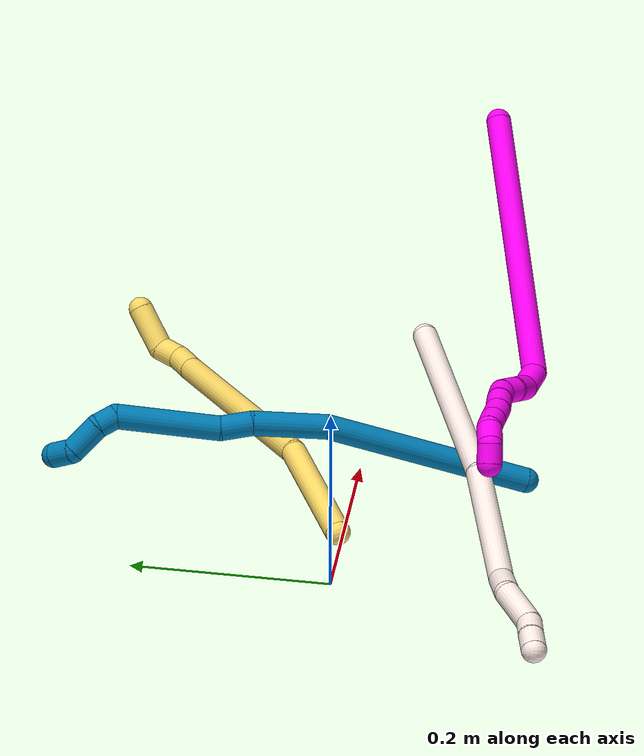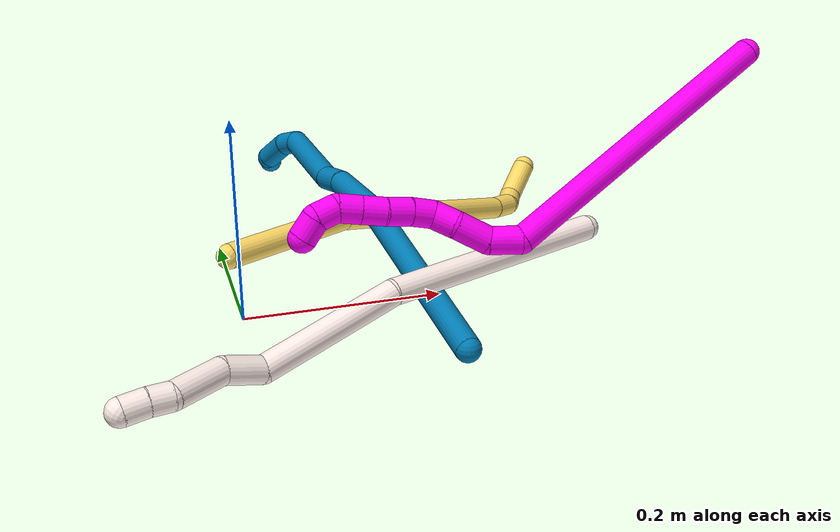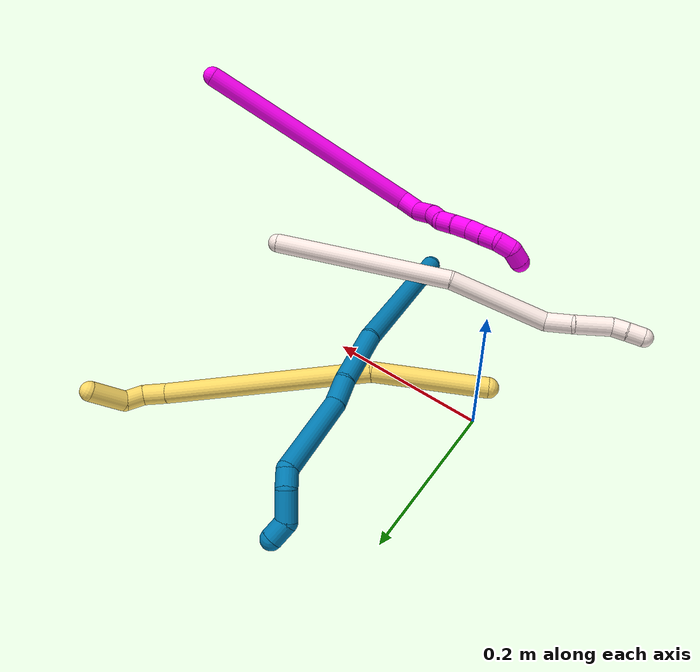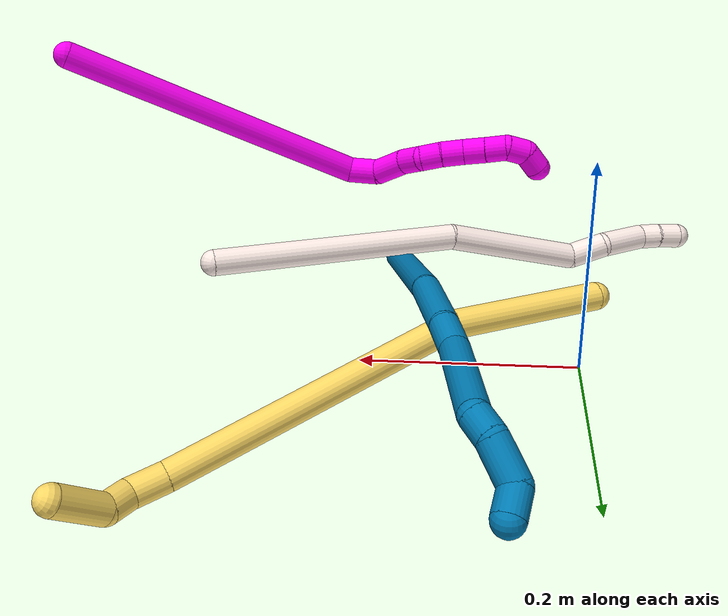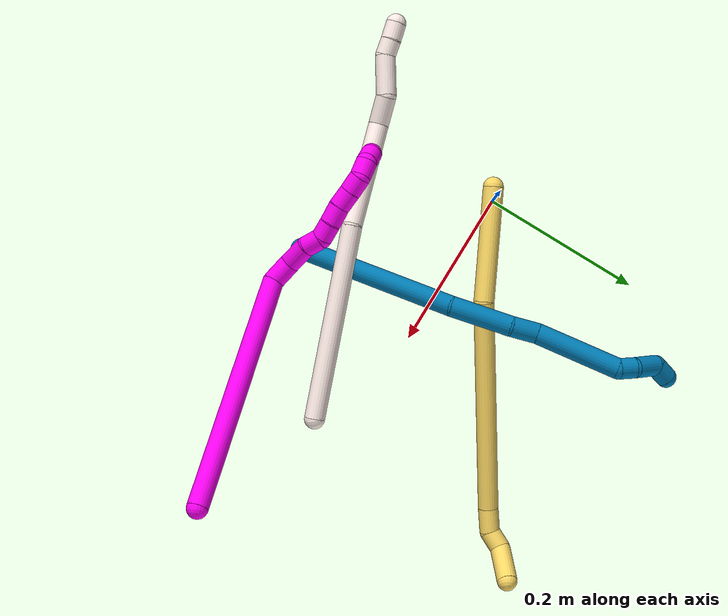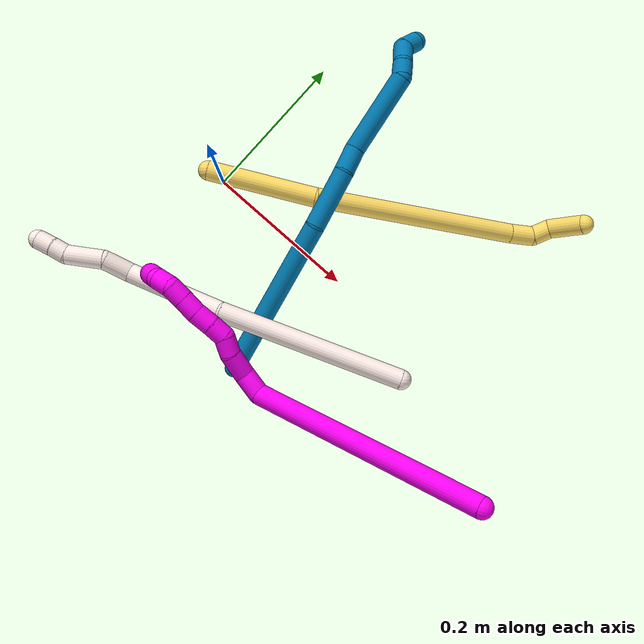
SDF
<sdf version="1.7">
 <world name="default">
  <model name="5">
   <static>0</static>
   <link name="5">
    <collision name="collision-cylinder-e_1_1_4">
     <pose>0.037156 0.019411 0.055386 -0.337096 0.564404 -0.098594</pose>
     <geometry><cylinder><radius>0.0125</radius><length>0.138924</length></cylinder></geometry>
     <surface>
      <friction><ode><mu>1.16</mu><mu2>1.16</mu2><slip1>0</slip1><slip2>0</slip2></ode></friction>
      <contact><ode><kp>1e+06</kp><kd>1</kd><max_vel>0</max_vel><min_depth>0.001</min_depth></ode></contact>
     </surface>
    </collision>
    <visual name="visual-cylinder-e_1_1_4">
     <pose>0.037156 0.019411 0.055386 -0.337096 0.564404 -0.098594</pose>
     <geometry><cylinder><radius>0.0125</radius><length>0.138924</length></cylinder></geometry>
     <material><ambient>1 0.858824 0.4 1</ambient></material>
    </visual>
    <collision name="collision-cylinder-e_2_4_5">
     <pose>0.154613 0.100895 0.192617 -0.648869 0.663506 -0.230684</pose>
     <geometry><cylinder><radius>0.0125</radius><length>0.260767</length></cylinder></geometry>
     <surface>
      <friction><ode><mu>1.16</mu><mu2>1.16</mu2><slip1>0</slip1><slip2>0</slip2></ode></friction>
      <contact><ode><kp>1e+06</kp><kd>1</kd><max_vel>0</max_vel><min_depth>0.001</min_depth></ode></contact>
     </surface>
    </collision>
    <visual name="visual-cylinder-e_2_4_5">
     <pose>0.154613 0.100895 0.192617 -0.648869 0.663506 -0.230684</pose>
     <geometry><cylinder><radius>0.0125</radius><length>0.260767</length></cylinder></geometry>
     <material><ambient>1 0.858824 0.4 1</ambient></material>
    </visual>
    <collision name="collision-cylinder-e_3_5_6">
     <pose>0.243028 0.170067 0.285196 -0.584253 0.562541 -0.173345</pose>
     <geometry><cylinder><radius>0.0125</radius><length>0.030428</length></cylinder></geometry>
     <surface>
      <friction><ode><mu>1.16</mu><mu2>1.16</mu2><slip1>0</slip1><slip2>0</slip2></ode></friction>
      <contact><ode><kp>1e+06</kp><kd>1</kd><max_vel>0</max_vel><min_depth>0.001</min_depth></ode></contact>
     </surface>
    </collision>
    <visual name="visual-cylinder-e_3_5_6">
     <pose>0.243028 0.170067 0.285196 -0.584253 0.562541 -0.173345</pose>
     <geometry><cylinder><radius>0.0125</radius><length>0.030428</length></cylinder></geometry>
     <material><ambient>1 0.858824 0.4 1</ambient></material>
    </visual>
    <collision name="collision-cylinder-e_4_6_7">
     <pose>0.251465 0.185192 0.304702 -0.741156 0.02708 -0.010522</pose>
     <geometry><cylinder><radius>0.0125</radius><length>0.023788</length></cylinder></geometry>
     <surface>
      <friction><ode><mu>1.16</mu><mu2>1.16</mu2><slip1>0</slip1><slip2>0</slip2></ode></friction>
      <contact><ode><kp>1e+06</kp><kd>1</kd><max_vel>0</max_vel><min_depth>0.001</min_depth></ode></contact>
     </surface>
    </collision>
    <visual name="visual-cylinder-e_4_6_7">
     <pose>0.251465 0.185192 0.304702 -0.741156 0.02708 -0.010522</pose>
     <geometry><cylinder><radius>0.0125</radius><length>0.023788</length></cylinder></geometry>
     <material><ambient>1 0.858824 0.4 1</ambient></material>
    </visual>
    <collision name="collision-cylinder-e_5_7_2">
     <pose>0.24978 0.196112 0.336249 -0.126301 -0.087166 0.005515</pose>
     <geometry><cylinder><radius>0.0125</radius><length>0.046093</length></cylinder></geometry>
     <surface>
      <friction><ode><mu>1.16</mu><mu2>1.16</mu2><slip1>0</slip1><slip2>0</slip2></ode></friction>
      <contact><ode><kp>1e+06</kp><kd>1</kd><max_vel>0</max_vel><min_depth>0.001</min_depth></ode></contact>
     </surface>
    </collision>
    <visual name="visual-cylinder-e_5_7_2">
     <pose>0.24978 0.196112 0.336249 -0.126301 -0.087166 0.005515</pose>
     <geometry><cylinder><radius>0.0125</radius><length>0.046093</length></cylinder></geometry>
     <material><ambient>1 0.858824 0.4 1</ambient></material>
    </visual>
    <collision name="collision-sphere-2">
     <pose>0.247774 0.199004 0.359025 0 -0 0</pose>
     <geometry><sphere><radius>0.0125</radius></sphere></geometry>
     <surface>
      <friction><ode><mu>1.16</mu><mu2>1.16</mu2><slip1>0</slip1><slip2>0</slip2></ode></friction>
      <contact><ode><kp>1e+06</kp><kd>1</kd><max_vel>0</max_vel><min_depth>0.001</min_depth></ode></contact>
     </surface>
    </collision>
    <visual name="visual-sphere-2">
     <pose>0.247774 0.199004 0.359025 0 -0 0</pose>
     <geometry><sphere><radius>0.0125</radius></sphere></geometry>
     <material><ambient>1 0.858824 0.4 1</ambient></material>
    </visual>
    <collision name="collision-sphere-7">
     <pose>0.251787 0.19322 0.313473 0 -0 0</pose>
     <geometry><sphere><radius>0.0125</radius></sphere></geometry>
     <surface>
      <friction><ode><mu>1.16</mu><mu2>1.16</mu2><slip1>0</slip1><slip2>0</slip2></ode></friction>
      <contact><ode><kp>1e+06</kp><kd>1</kd><max_vel>0</max_vel><min_depth>0.001</min_depth></ode></contact>
     </surface>
    </collision>
    <visual name="visual-sphere-7">
     <pose>0.251787 0.19322 0.313473 0 -0 0</pose>
     <geometry><sphere><radius>0.0125</radius></sphere></geometry>
     <material><ambient>1 0.858824 0.4 1</ambient></material>
    </visual>
    <collision name="collision-sphere-6">
     <pose>0.251143 0.177165 0.295931 0 -0 0</pose>
     <geometry><sphere><radius>0.0125</radius></sphere></geometry>
     <surface>
      <friction><ode><mu>1.16</mu><mu2>1.16</mu2><slip1>0</slip1><slip2>0</slip2></ode></friction>
      <contact><ode><kp>1e+06</kp><kd>1</kd><max_vel>0</max_vel><min_depth>0.001</min_depth></ode></contact>
     </surface>
    </collision>
    <visual name="visual-sphere-6">
     <pose>0.251143 0.177165 0.295931 0 -0 0</pose>
     <geometry><sphere><radius>0.0125</radius></sphere></geometry>
     <material><ambient>1 0.858824 0.4 1</ambient></material>
    </visual>
    <collision name="collision-sphere-5">
     <pose>0.234914 0.162968 0.274461 0 -0 0</pose>
     <geometry><sphere><radius>0.0125</radius></sphere></geometry>
     <surface>
      <friction><ode><mu>1.16</mu><mu2>1.16</mu2><slip1>0</slip1><slip2>0</slip2></ode></friction>
      <contact><ode><kp>1e+06</kp><kd>1</kd><max_vel>0</max_vel><min_depth>0.001</min_depth></ode></contact>
     </surface>
    </collision>
    <visual name="visual-sphere-5">
     <pose>0.234914 0.162968 0.274461 0 -0 0</pose>
     <geometry><sphere><radius>0.0125</radius></sphere></geometry>
     <material><ambient>1 0.858824 0.4 1</ambient></material>
    </visual>
    <collision name="collision-sphere-1">
     <geometry><sphere><radius>0.0125</radius></sphere></geometry>
     <surface>
      <friction><ode><mu>1.16</mu><mu2>1.16</mu2><slip1>0</slip1><slip2>0</slip2></ode></friction>
      <contact><ode><kp>1e+06</kp><kd>1</kd><max_vel>0</max_vel><min_depth>0.001</min_depth></ode></contact>
     </surface>
    </collision>
    <visual name="visual-sphere-1">
     <geometry><sphere><radius>0.0125</radius></sphere></geometry>
     <material><ambient>1 0.858824 0.4 1</ambient></material>
    </visual>
    <collision name="collision-sphere-4">
     <pose>0.074312 0.038823 0.110772 0 -0 0</pose>
     <geometry><sphere><radius>0.0125</radius></sphere></geometry>
     <surface>
      <friction><ode><mu>1.16</mu><mu2>1.16</mu2><slip1>0</slip1><slip2>0</slip2></ode></friction>
      <contact><ode><kp>1e+06</kp><kd>1</kd><max_vel>0</max_vel><min_depth>0.001</min_depth></ode></contact>
     </surface>
    </collision>
    <visual name="visual-sphere-4">
     <pose>0.074312 0.038823 0.110772 0 -0 0</pose>
     <geometry><sphere><radius>0.0125</radius></sphere></geometry>
     <material><ambient>1 0.858824 0.4 1</ambient></material>
    </visual>
    <inertial>
     <pose>0.140739 0.095253 0.178695 0 -0 0</pose>
     <mass>0.5</mass>
     <inertia>
      <ixx>0.00108</ixx>
      <ixy>0</ixy>
      <ixz>0</ixz>
      <iyy>0.001242</iyy>
      <iyz>0</iyz>
      <izz>-0.001788</izz>
     </inertia>
    </inertial>
   </link>
   <pose>-0.009771 -0.00849 0.070441 -0.639811 0.689803 -0.307536</pose>
  </model>
  <model name="9">
   <static>0</static>
   <link name="9">
    <collision name="collision-cylinder-e_1_1_4">
     <pose>-0.003085 0.100438 0.030328 -1.27755 -0.029393 0.021829</pose>
     <geometry><cylinder><radius>0.0125</radius><length>0.209925</length></cylinder></geometry>
     <surface>
      <friction><ode><mu>1.16</mu><mu2>1.16</mu2><slip1>0</slip1><slip2>0</slip2></ode></friction>
      <contact><ode><kp>1e+06</kp><kd>1</kd><max_vel>0</max_vel><min_depth>0.001</min_depth></ode></contact>
     </surface>
    </collision>
    <visual name="visual-cylinder-e_1_1_4">
     <pose>-0.003085 0.100438 0.030328 -1.27755 -0.029393 0.021829</pose>
     <geometry><cylinder><radius>0.0125</radius><length>0.209925</length></cylinder></geometry>
     <material><ambient>0 0.490196 0.709804 1</ambient></material>
    </visual>
    <collision name="collision-cylinder-e_2_4_5">
     <pose>-0.008976 0.238274 0.063187 -1.50321 -0.074725 0.069842</pose>
     <geometry><cylinder><radius>0.0125</radius><length>0.075176</length></cylinder></geometry>
     <surface>
      <friction><ode><mu>1.16</mu><mu2>1.16</mu2><slip1>0</slip1><slip2>0</slip2></ode></friction>
      <contact><ode><kp>1e+06</kp><kd>1</kd><max_vel>0</max_vel><min_depth>0.001</min_depth></ode></contact>
     </surface>
    </collision>
    <visual name="visual-cylinder-e_2_4_5">
     <pose>-0.008976 0.238274 0.063187 -1.50321 -0.074725 0.069842</pose>
     <geometry><cylinder><radius>0.0125</radius><length>0.075176</length></cylinder></geometry>
     <material><ambient>0 0.490196 0.709804 1</ambient></material>
    </visual>
    <collision name="collision-cylinder-e_3_5_6">
     <pose>-0.013889 0.291417 0.063396 -1.71726 -0.131666 0.152439</pose>
     <geometry><cylinder><radius>0.0125</radius><length>0.032109</length></cylinder></geometry>
     <surface>
      <friction><ode><mu>1.16</mu><mu2>1.16</mu2><slip1>0</slip1><slip2>0</slip2></ode></friction>
      <contact><ode><kp>1e+06</kp><kd>1</kd><max_vel>0</max_vel><min_depth>0.001</min_depth></ode></contact>
     </surface>
    </collision>
    <visual name="visual-cylinder-e_3_5_6">
     <pose>-0.013889 0.291417 0.063396 -1.71726 -0.131666 0.152439</pose>
     <geometry><cylinder><radius>0.0125</radius><length>0.032109</length></cylinder></geometry>
     <material><ambient>0 0.490196 0.709804 1</ambient></material>
    </visual>
    <collision name="collision-cylinder-e_4_6_7">
     <pose>-0.015266 0.359069 0.065629 -1.48324 0.014026 -0.012849</pose>
     <geometry><cylinder><radius>0.0125</radius><length>0.104225</length></cylinder></geometry>
     <surface>
      <friction><ode><mu>1.16</mu><mu2>1.16</mu2><slip1>0</slip1><slip2>0</slip2></ode></friction>
      <contact><ode><kp>1e+06</kp><kd>1</kd><max_vel>0</max_vel><min_depth>0.001</min_depth></ode></contact>
     </surface>
    </collision>
    <visual name="visual-cylinder-e_4_6_7">
     <pose>-0.015266 0.359069 0.065629 -1.48324 0.014026 -0.012849</pose>
     <geometry><cylinder><radius>0.0125</radius><length>0.104225</length></cylinder></geometry>
     <material><ambient>0 0.490196 0.709804 1</ambient></material>
    </visual>
    <collision name="collision-cylinder-e_5_7_8">
     <pose>-0.018936 0.419871 0.066841 -1.93053 -0.433716 0.616231</pose>
     <geometry><cylinder><radius>0.0125</radius><length>0.020945</length></cylinder></geometry>
     <surface>
      <friction><ode><mu>1.16</mu><mu2>1.16</mu2><slip1>0</slip1><slip2>0</slip2></ode></friction>
      <contact><ode><kp>1e+06</kp><kd>1</kd><max_vel>0</max_vel><min_depth>0.001</min_depth></ode></contact>
     </surface>
    </collision>
    <visual name="visual-cylinder-e_5_7_8">
     <pose>-0.018936 0.419871 0.066841 -1.93053 -0.433716 0.616231</pose>
     <geometry><cylinder><radius>0.0125</radius><length>0.020945</length></cylinder></geometry>
     <material><ambient>0 0.490196 0.709804 1</ambient></material>
    </visual>
    <collision name="collision-cylinder-e_6_8_9">
     <pose>-0.029553 0.440506 0.052454 -2.32551 -0.368115 0.813266</pose>
     <geometry><cylinder><radius>0.0125</radius><length>0.034549</length></cylinder></geometry>
     <surface>
      <friction><ode><mu>1.16</mu><mu2>1.16</mu2><slip1>0</slip1><slip2>0</slip2></ode></friction>
      <contact><ode><kp>1e+06</kp><kd>1</kd><max_vel>0</max_vel><min_depth>0.001</min_depth></ode></contact>
     </surface>
    </collision>
    <visual name="visual-cylinder-e_6_8_9">
     <pose>-0.029553 0.440506 0.052454 -2.32551 -0.368115 0.813266</pose>
     <geometry><cylinder><radius>0.0125</radius><length>0.034549</length></cylinder></geometry>
     <material><ambient>0 0.490196 0.709804 1</ambient></material>
    </visual>
    <collision name="collision-cylinder-e_7_9_2">
     <pose>-0.031864 0.461499 0.035735 -2.12122 0.345397 -0.604336</pose>
     <geometry><cylinder><radius>0.0125</radius><length>0.023072</length></cylinder></geometry>
     <surface>
      <friction><ode><mu>1.16</mu><mu2>1.16</mu2><slip1>0</slip1><slip2>0</slip2></ode></friction>
      <contact><ode><kp>1e+06</kp><kd>1</kd><max_vel>0</max_vel><min_depth>0.001</min_depth></ode></contact>
     </surface>
    </collision>
    <visual name="visual-cylinder-e_7_9_2">
     <pose>-0.031864 0.461499 0.035735 -2.12122 0.345397 -0.604336</pose>
     <geometry><cylinder><radius>0.0125</radius><length>0.023072</length></cylinder></geometry>
     <material><ambient>0 0.490196 0.709804 1</ambient></material>
    </visual>
    <collision name="collision-sphere-2">
     <pose>-0.027958 0.47075 0.030057 0 -0 0</pose>
     <geometry><sphere><radius>0.0125</radius></sphere></geometry>
     <surface>
      <friction><ode><mu>1.16</mu><mu2>1.16</mu2><slip1>0</slip1><slip2>0</slip2></ode></friction>
      <contact><ode><kp>1e+06</kp><kd>1</kd><max_vel>0</max_vel><min_depth>0.001</min_depth></ode></contact>
     </surface>
    </collision>
    <visual name="visual-sphere-2">
     <pose>-0.027958 0.47075 0.030057 0 -0 0</pose>
     <geometry><sphere><radius>0.0125</radius></sphere></geometry>
     <material><ambient>0 0.490196 0.709804 1</ambient></material>
    </visual>
    <collision name="collision-sphere-9">
     <pose>-0.03577 0.452247 0.041413 0 -0 0</pose>
     <geometry><sphere><radius>0.0125</radius></sphere></geometry>
     <surface>
      <friction><ode><mu>1.16</mu><mu2>1.16</mu2><slip1>0</slip1><slip2>0</slip2></ode></friction>
      <contact><ode><kp>1e+06</kp><kd>1</kd><max_vel>0</max_vel><min_depth>0.001</min_depth></ode></contact>
     </surface>
    </collision>
    <visual name="visual-sphere-9">
     <pose>-0.03577 0.452247 0.041413 0 -0 0</pose>
     <geometry><sphere><radius>0.0125</radius></sphere></geometry>
     <material><ambient>0 0.490196 0.709804 1</ambient></material>
    </visual>
    <collision name="collision-sphere-4">
     <pose>-0.006169 0.200877 0.060655 0 -0 0</pose>
     <geometry><sphere><radius>0.0125</radius></sphere></geometry>
     <surface>
      <friction><ode><mu>1.16</mu><mu2>1.16</mu2><slip1>0</slip1><slip2>0</slip2></ode></friction>
      <contact><ode><kp>1e+06</kp><kd>1</kd><max_vel>0</max_vel><min_depth>0.001</min_depth></ode></contact>
     </surface>
    </collision>
    <visual name="visual-sphere-4">
     <pose>-0.006169 0.200877 0.060655 0 -0 0</pose>
     <geometry><sphere><radius>0.0125</radius></sphere></geometry>
     <material><ambient>0 0.490196 0.709804 1</ambient></material>
    </visual>
    <collision name="collision-sphere-1">
     <geometry><sphere><radius>0.0125</radius></sphere></geometry>
     <surface>
      <friction><ode><mu>1.16</mu><mu2>1.16</mu2><slip1>0</slip1><slip2>0</slip2></ode></friction>
      <contact><ode><kp>1e+06</kp><kd>1</kd><max_vel>0</max_vel><min_depth>0.001</min_depth></ode></contact>
     </surface>
    </collision>
    <visual name="visual-sphere-1">
     <geometry><sphere><radius>0.0125</radius></sphere></geometry>
     <material><ambient>0 0.490196 0.709804 1</ambient></material>
    </visual>
    <collision name="collision-sphere-8">
     <pose>-0.023337 0.428766 0.063496 0 -0 0</pose>
     <geometry><sphere><radius>0.0125</radius></sphere></geometry>
     <surface>
      <friction><ode><mu>1.16</mu><mu2>1.16</mu2><slip1>0</slip1><slip2>0</slip2></ode></friction>
      <contact><ode><kp>1e+06</kp><kd>1</kd><max_vel>0</max_vel><min_depth>0.001</min_depth></ode></contact>
     </surface>
    </collision>
    <visual name="visual-sphere-8">
     <pose>-0.023337 0.428766 0.063496 0 -0 0</pose>
     <geometry><sphere><radius>0.0125</radius></sphere></geometry>
     <material><ambient>0 0.490196 0.709804 1</ambient></material>
    </visual>
    <collision name="collision-sphere-5">
     <pose>-0.011782 0.275672 0.065718 0 -0 0</pose>
     <geometry><sphere><radius>0.0125</radius></sphere></geometry>
     <surface>
      <friction><ode><mu>1.16</mu><mu2>1.16</mu2><slip1>0</slip1><slip2>0</slip2></ode></friction>
      <contact><ode><kp>1e+06</kp><kd>1</kd><max_vel>0</max_vel><min_depth>0.001</min_depth></ode></contact>
     </surface>
    </collision>
    <visual name="visual-sphere-5">
     <pose>-0.011782 0.275672 0.065718 0 -0 0</pose>
     <geometry><sphere><radius>0.0125</radius></sphere></geometry>
     <material><ambient>0 0.490196 0.709804 1</ambient></material>
    </visual>
    <collision name="collision-sphere-6">
     <pose>-0.015997 0.307162 0.061073 0 -0 0</pose>
     <geometry><sphere><radius>0.0125</radius></sphere></geometry>
     <surface>
      <friction><ode><mu>1.16</mu><mu2>1.16</mu2><slip1>0</slip1><slip2>0</slip2></ode></friction>
      <contact><ode><kp>1e+06</kp><kd>1</kd><max_vel>0</max_vel><min_depth>0.001</min_depth></ode></contact>
     </surface>
    </collision>
    <visual name="visual-sphere-6">
     <pose>-0.015997 0.307162 0.061073 0 -0 0</pose>
     <geometry><sphere><radius>0.0125</radius></sphere></geometry>
     <material><ambient>0 0.490196 0.709804 1</ambient></material>
    </visual>
    <collision name="collision-sphere-7">
     <pose>-0.014535 0.410977 0.070186 0 -0 0</pose>
     <geometry><sphere><radius>0.0125</radius></sphere></geometry>
     <surface>
      <friction><ode><mu>1.16</mu><mu2>1.16</mu2><slip1>0</slip1><slip2>0</slip2></ode></friction>
      <contact><ode><kp>1e+06</kp><kd>1</kd><max_vel>0</max_vel><min_depth>0.001</min_depth></ode></contact>
     </surface>
    </collision>
    <visual name="visual-sphere-7">
     <pose>-0.014535 0.410977 0.070186 0 -0 0</pose>
     <geometry><sphere><radius>0.0125</radius></sphere></geometry>
     <material><ambient>0 0.490196 0.709804 1</ambient></material>
    </visual>
    <inertial>
     <pose>-0.011024 0.240877 0.048058 0 -0 0</pose>
     <mass>0.5</mass>
     <inertia>
      <ixx>0.000945</ixx>
      <ixy>0</ixy>
      <ixz>0</ixz>
      <iyy>0.000293</iyy>
      <iyz>0</iyz>
      <izz>-0.000863</izz>
     </inertia>
    </inertial>
   </link>
   <pose>0.175113 -0.170979 0.021142 0.042039 -0.002217 0.152246</pose>
  </model>
  <model name="10">
   <static>0</static>
   <link name="10">
    <collision name="collision-cylinder-e_1_1_4">
     <pose>-0.002599 0.031427 -0.142941 -2.92518 -0.017756 0.163091</pose>
     <geometry><cylinder><radius>0.0125</radius><length>0.292755</length></cylinder></geometry>
     <surface>
      <friction><ode><mu>1.16</mu><mu2>1.16</mu2><slip1>0</slip1><slip2>0</slip2></ode></friction>
      <contact><ode><kp>1e+06</kp><kd>1</kd><max_vel>0</max_vel><min_depth>0.001</min_depth></ode></contact>
     </surface>
    </collision>
    <visual name="visual-cylinder-e_1_1_4">
     <pose>-0.002599 0.031427 -0.142941 -2.92518 -0.017756 0.163091</pose>
     <geometry><cylinder><radius>0.0125</radius><length>0.292755</length></cylinder></geometry>
     <material><ambient>1 0 0.964706 1</ambient></material>
    </visual>
    <collision name="collision-cylinder-e_2_4_5">
     <pose>-0.014474 0.063895 -0.297109 -3.0491 -0.688399 2.8848</pose>
     <geometry><cylinder><radius>0.0125</radius><length>0.029202</length></cylinder></geometry>
     <surface>
      <friction><ode><mu>1.16</mu><mu2>1.16</mu2><slip1>0</slip1><slip2>0</slip2></ode></friction>
      <contact><ode><kp>1e+06</kp><kd>1</kd><max_vel>0</max_vel><min_depth>0.001</min_depth></ode></contact>
     </surface>
    </collision>
    <visual name="visual-cylinder-e_2_4_5">
     <pose>-0.014474 0.063895 -0.297109 -3.0491 -0.688399 2.8848</pose>
     <geometry><cylinder><radius>0.0125</radius><length>0.029202</length></cylinder></geometry>
     <material><ambient>1 0 0.964706 1</ambient></material>
    </visual>
    <collision name="collision-cylinder-e_3_5_6">
     <pose>-0.036625 0.060711 -0.316343 2.65595 -0.957985 -2.25147</pose>
     <geometry><cylinder><radius>0.0125</radius><length>0.031479</length></cylinder></geometry>
     <surface>
      <friction><ode><mu>1.16</mu><mu2>1.16</mu2><slip1>0</slip1><slip2>0</slip2></ode></friction>
      <contact><ode><kp>1e+06</kp><kd>1</kd><max_vel>0</max_vel><min_depth>0.001</min_depth></ode></contact>
     </surface>
    </collision>
    <visual name="visual-cylinder-e_3_5_6">
     <pose>-0.036625 0.060711 -0.316343 2.65595 -0.957985 -2.25147</pose>
     <geometry><cylinder><radius>0.0125</radius><length>0.031479</length></cylinder></geometry>
     <material><ambient>1 0 0.964706 1</ambient></material>
    </visual>
    <collision name="collision-cylinder-e_4_6_7">
     <pose>-0.059507 0.056141 -0.328772 3.06384 -1.15342 -3.02214</pose>
     <geometry><cylinder><radius>0.0125</radius><length>0.021892</length></cylinder></geometry>
     <surface>
      <friction><ode><mu>1.16</mu><mu2>1.16</mu2><slip1>0</slip1><slip2>0</slip2></ode></friction>
      <contact><ode><kp>1e+06</kp><kd>1</kd><max_vel>0</max_vel><min_depth>0.001</min_depth></ode></contact>
     </surface>
    </collision>
    <visual name="visual-cylinder-e_4_6_7">
     <pose>-0.059507 0.056141 -0.328772 3.06384 -1.15342 -3.02214</pose>
     <geometry><cylinder><radius>0.0125</radius><length>0.021892</length></cylinder></geometry>
     <material><ambient>1 0 0.964706 1</ambient></material>
    </visual>
    <collision name="collision-cylinder-e_5_7_8">
     <pose>-0.075546 0.053645 -0.341199 2.87902 -0.62922 -2.37065</pose>
     <geometry><cylinder><radius>0.0125</radius><length>0.020502</length></cylinder></geometry>
     <surface>
      <friction><ode><mu>1.16</mu><mu2>1.16</mu2><slip1>0</slip1><slip2>0</slip2></ode></friction>
      <contact><ode><kp>1e+06</kp><kd>1</kd><max_vel>0</max_vel><min_depth>0.001</min_depth></ode></contact>
     </surface>
    </collision>
    <visual name="visual-cylinder-e_5_7_8">
     <pose>-0.075546 0.053645 -0.341199 2.87902 -0.62922 -2.37065</pose>
     <geometry><cylinder><radius>0.0125</radius><length>0.020502</length></cylinder></geometry>
     <material><ambient>1 0 0.964706 1</ambient></material>
    </visual>
    <collision name="collision-cylinder-e_6_8_9">
     <pose>-0.087216 0.049787 -0.358484 2.95979 -0.538482 -2.50349</pose>
     <geometry><cylinder><radius>0.0125</radius><length>0.021984</length></cylinder></geometry>
     <surface>
      <friction><ode><mu>1.16</mu><mu2>1.16</mu2><slip1>0</slip1><slip2>0</slip2></ode></friction>
      <contact><ode><kp>1e+06</kp><kd>1</kd><max_vel>0</max_vel><min_depth>0.001</min_depth></ode></contact>
     </surface>
    </collision>
    <visual name="visual-cylinder-e_6_8_9">
     <pose>-0.087216 0.049787 -0.358484 2.95979 -0.538482 -2.50349</pose>
     <geometry><cylinder><radius>0.0125</radius><length>0.021984</length></cylinder></geometry>
     <material><ambient>1 0 0.964706 1</ambient></material>
    </visual>
    <collision name="collision-cylinder-e_7_9_10">
     <pose>-0.099567 0.047085 -0.376098 3.02257 -0.674758 -2.80511</pose>
     <geometry><cylinder><radius>0.0125</radius><length>0.021495</length></cylinder></geometry>
     <surface>
      <friction><ode><mu>1.16</mu><mu2>1.16</mu2><slip1>0</slip1><slip2>0</slip2></ode></friction>
      <contact><ode><kp>1e+06</kp><kd>1</kd><max_vel>0</max_vel><min_depth>0.001</min_depth></ode></contact>
     </surface>
    </collision>
    <visual name="visual-cylinder-e_7_9_10">
     <pose>-0.099567 0.047085 -0.376098 3.02257 -0.674758 -2.80511</pose>
     <geometry><cylinder><radius>0.0125</radius><length>0.021495</length></cylinder></geometry>
     <material><ambient>1 0 0.964706 1</ambient></material>
    </visual>
    <collision name="collision-cylinder-e_8_10_11">
     <pose>-0.11252 0.044824 -0.392506 2.98629 -0.651989 -2.68915</pose>
     <geometry><cylinder><radius>0.0125</radius><length>0.020566</length></cylinder></geometry>
     <surface>
      <friction><ode><mu>1.16</mu><mu2>1.16</mu2><slip1>0</slip1><slip2>0</slip2></ode></friction>
      <contact><ode><kp>1e+06</kp><kd>1</kd><max_vel>0</max_vel><min_depth>0.001</min_depth></ode></contact>
     </surface>
    </collision>
    <visual name="visual-cylinder-e_8_10_11">
     <pose>-0.11252 0.044824 -0.392506 2.98629 -0.651989 -2.68915</pose>
     <geometry><cylinder><radius>0.0125</radius><length>0.020566</length></cylinder></geometry>
     <material><ambient>1 0 0.964706 1</ambient></material>
    </visual>
    <collision name="collision-cylinder-e_9_11_12">
     <pose>-0.120777 0.044836 -0.410337 -3.01154 -0.202203 2.00027</pose>
     <geometry><cylinder><radius>0.0125</radius><length>0.020087</length></cylinder></geometry>
     <surface>
      <friction><ode><mu>1.16</mu><mu2>1.16</mu2><slip1>0</slip1><slip2>0</slip2></ode></friction>
      <contact><ode><kp>1e+06</kp><kd>1</kd><max_vel>0</max_vel><min_depth>0.001</min_depth></ode></contact>
     </surface>
    </collision>
    <visual name="visual-cylinder-e_9_11_12">
     <pose>-0.120777 0.044836 -0.410337 -3.01154 -0.202203 2.00027</pose>
     <geometry><cylinder><radius>0.0125</radius><length>0.020087</length></cylinder></geometry>
     <material><ambient>1 0 0.964706 1</ambient></material>
    </visual>
    <collision name="collision-cylinder-e_10_12_2">
     <pose>-0.12125 0.05208 -0.427991 -2.49447 0.154714 -0.454299</pose>
     <geometry><cylinder><radius>0.0125</radius><length>0.020039</length></cylinder></geometry>
     <surface>
      <friction><ode><mu>1.16</mu><mu2>1.16</mu2><slip1>0</slip1><slip2>0</slip2></ode></friction>
      <contact><ode><kp>1e+06</kp><kd>1</kd><max_vel>0</max_vel><min_depth>0.001</min_depth></ode></contact>
     </surface>
    </collision>
    <visual name="visual-cylinder-e_10_12_2">
     <pose>-0.12125 0.05208 -0.427991 -2.49447 0.154714 -0.454299</pose>
     <geometry><cylinder><radius>0.0125</radius><length>0.020039</length></cylinder></geometry>
     <material><ambient>1 0 0.964706 1</ambient></material>
    </visual>
    <collision name="collision-sphere-2">
     <pose>-0.119706 0.058048 -0.435889 0 -0 0</pose>
     <geometry><sphere><radius>0.0125</radius></sphere></geometry>
     <surface>
      <friction><ode><mu>1.16</mu><mu2>1.16</mu2><slip1>0</slip1><slip2>0</slip2></ode></friction>
      <contact><ode><kp>1e+06</kp><kd>1</kd><max_vel>0</max_vel><min_depth>0.001</min_depth></ode></contact>
     </surface>
    </collision>
    <visual name="visual-sphere-2">
     <pose>-0.119706 0.058048 -0.435889 0 -0 0</pose>
     <geometry><sphere><radius>0.0125</radius></sphere></geometry>
     <material><ambient>1 0 0.964706 1</ambient></material>
    </visual>
    <collision name="collision-sphere-12">
     <pose>-0.122794 0.046112 -0.420093 0 -0 0</pose>
     <geometry><sphere><radius>0.0125</radius></sphere></geometry>
     <surface>
      <friction><ode><mu>1.16</mu><mu2>1.16</mu2><slip1>0</slip1><slip2>0</slip2></ode></friction>
      <contact><ode><kp>1e+06</kp><kd>1</kd><max_vel>0</max_vel><min_depth>0.001</min_depth></ode></contact>
     </surface>
    </collision>
    <visual name="visual-sphere-12">
     <pose>-0.122794 0.046112 -0.420093 0 -0 0</pose>
     <geometry><sphere><radius>0.0125</radius></sphere></geometry>
     <material><ambient>1 0 0.964706 1</ambient></material>
    </visual>
    <collision name="collision-sphere-11">
     <pose>-0.11876 0.04356 -0.400582 0 -0 0</pose>
     <geometry><sphere><radius>0.0125</radius></sphere></geometry>
     <surface>
      <friction><ode><mu>1.16</mu><mu2>1.16</mu2><slip1>0</slip1><slip2>0</slip2></ode></friction>
      <contact><ode><kp>1e+06</kp><kd>1</kd><max_vel>0</max_vel><min_depth>0.001</min_depth></ode></contact>
     </surface>
    </collision>
    <visual name="visual-sphere-11">
     <pose>-0.11876 0.04356 -0.400582 0 -0 0</pose>
     <geometry><sphere><radius>0.0125</radius></sphere></geometry>
     <material><ambient>1 0 0.964706 1</ambient></material>
    </visual>
    <collision name="collision-sphere-10">
     <pose>-0.106281 0.046088 -0.384431 0 -0 0</pose>
     <geometry><sphere><radius>0.0125</radius></sphere></geometry>
     <surface>
      <friction><ode><mu>1.16</mu><mu2>1.16</mu2><slip1>0</slip1><slip2>0</slip2></ode></friction>
      <contact><ode><kp>1e+06</kp><kd>1</kd><max_vel>0</max_vel><min_depth>0.001</min_depth></ode></contact>
     </surface>
    </collision>
    <visual name="visual-sphere-10">
     <pose>-0.106281 0.046088 -0.384431 0 -0 0</pose>
     <geometry><sphere><radius>0.0125</radius></sphere></geometry>
     <material><ambient>1 0 0.964706 1</ambient></material>
    </visual>
    <collision name="collision-sphere-9">
     <pose>-0.092853 0.048081 -0.367765 0 -0 0</pose>
     <geometry><sphere><radius>0.0125</radius></sphere></geometry>
     <surface>
      <friction><ode><mu>1.16</mu><mu2>1.16</mu2><slip1>0</slip1><slip2>0</slip2></ode></friction>
      <contact><ode><kp>1e+06</kp><kd>1</kd><max_vel>0</max_vel><min_depth>0.001</min_depth></ode></contact>
     </surface>
    </collision>
    <visual name="visual-sphere-9">
     <pose>-0.092853 0.048081 -0.367765 0 -0 0</pose>
     <geometry><sphere><radius>0.0125</radius></sphere></geometry>
     <material><ambient>1 0 0.964706 1</ambient></material>
    </visual>
    <collision name="collision-sphere-4">
     <pose>-0.005198 0.062854 -0.285881 0 -0 0</pose>
     <geometry><sphere><radius>0.0125</radius></sphere></geometry>
     <surface>
      <friction><ode><mu>1.16</mu><mu2>1.16</mu2><slip1>0</slip1><slip2>0</slip2></ode></friction>
      <contact><ode><kp>1e+06</kp><kd>1</kd><max_vel>0</max_vel><min_depth>0.001</min_depth></ode></contact>
     </surface>
    </collision>
    <visual name="visual-sphere-4">
     <pose>-0.005198 0.062854 -0.285881 0 -0 0</pose>
     <geometry><sphere><radius>0.0125</radius></sphere></geometry>
     <material><ambient>1 0 0.964706 1</ambient></material>
    </visual>
    <collision name="collision-sphere-1">
     <geometry><sphere><radius>0.0125</radius></sphere></geometry>
     <surface>
      <friction><ode><mu>1.16</mu><mu2>1.16</mu2><slip1>0</slip1><slip2>0</slip2></ode></friction>
      <contact><ode><kp>1e+06</kp><kd>1</kd><max_vel>0</max_vel><min_depth>0.001</min_depth></ode></contact>
     </surface>
    </collision>
    <visual name="visual-sphere-1">
     <geometry><sphere><radius>0.0125</radius></sphere></geometry>
     <material><ambient>1 0 0.964706 1</ambient></material>
    </visual>
    <collision name="collision-sphere-8">
     <pose>-0.081579 0.051494 -0.349203 0 -0 0</pose>
     <geometry><sphere><radius>0.0125</radius></sphere></geometry>
     <surface>
      <friction><ode><mu>1.16</mu><mu2>1.16</mu2><slip1>0</slip1><slip2>0</slip2></ode></friction>
      <contact><ode><kp>1e+06</kp><kd>1</kd><max_vel>0</max_vel><min_depth>0.001</min_depth></ode></contact>
     </surface>
    </collision>
    <visual name="visual-sphere-8">
     <pose>-0.081579 0.051494 -0.349203 0 -0 0</pose>
     <geometry><sphere><radius>0.0125</radius></sphere></geometry>
     <material><ambient>1 0 0.964706 1</ambient></material>
    </visual>
    <collision name="collision-sphere-5">
     <pose>-0.02375 0.064937 -0.308336 0 -0 0</pose>
     <geometry><sphere><radius>0.0125</radius></sphere></geometry>
     <surface>
      <friction><ode><mu>1.16</mu><mu2>1.16</mu2><slip1>0</slip1><slip2>0</slip2></ode></friction>
      <contact><ode><kp>1e+06</kp><kd>1</kd><max_vel>0</max_vel><min_depth>0.001</min_depth></ode></contact>
     </surface>
    </collision>
    <visual name="visual-sphere-5">
     <pose>-0.02375 0.064937 -0.308336 0 -0 0</pose>
     <geometry><sphere><radius>0.0125</radius></sphere></geometry>
     <material><ambient>1 0 0.964706 1</ambient></material>
    </visual>
    <collision name="collision-sphere-6">
     <pose>-0.049501 0.056485 -0.324349 0 -0 0</pose>
     <geometry><sphere><radius>0.0125</radius></sphere></geometry>
     <surface>
      <friction><ode><mu>1.16</mu><mu2>1.16</mu2><slip1>0</slip1><slip2>0</slip2></ode></friction>
      <contact><ode><kp>1e+06</kp><kd>1</kd><max_vel>0</max_vel><min_depth>0.001</min_depth></ode></contact>
     </surface>
    </collision>
    <visual name="visual-sphere-6">
     <pose>-0.049501 0.056485 -0.324349 0 -0 0</pose>
     <geometry><sphere><radius>0.0125</radius></sphere></geometry>
     <material><ambient>1 0 0.964706 1</ambient></material>
    </visual>
    <collision name="collision-sphere-7">
     <pose>-0.069513 0.055796 -0.333196 0 -0 0</pose>
     <geometry><sphere><radius>0.0125</radius></sphere></geometry>
     <surface>
      <friction><ode><mu>1.16</mu><mu2>1.16</mu2><slip1>0</slip1><slip2>0</slip2></ode></friction>
      <contact><ode><kp>1e+06</kp><kd>1</kd><max_vel>0</max_vel><min_depth>0.001</min_depth></ode></contact>
     </surface>
    </collision>
    <visual name="visual-sphere-7">
     <pose>-0.069513 0.055796 -0.333196 0 -0 0</pose>
     <geometry><sphere><radius>0.0125</radius></sphere></geometry>
     <material><ambient>1 0 0.964706 1</ambient></material>
    </visual>
    <inertial>
     <pose>-0.032831 0.040558 -0.231059 0 -0 0</pose>
     <mass>0.5</mass>
     <inertia>
      <ixx>0.002395</ixx>
      <ixy>0</ixy>
      <ixz>0</ixz>
      <iyy>-0.001669</iyy>
      <iyz>0</iyz>
      <izz>-0.000437</izz>
     </inertia>
    </inertial>
   </link>
   <pose>0.47419 -0.100879 0.253106 -1.21414 0.523114 -0.9689</pose>
  </model>
  <model name="11">
   <static>0</static>
   <link name="11">
    <collision name="collision-cylinder-e_1_1_4">
     <pose>-0.114316 0.002198 0.030924 -0.070951 -1.30597 0.054281</pose>
     <geometry><cylinder><radius>0.0125</radius><length>0.236891</length></cylinder></geometry>
     <surface>
      <friction><ode><mu>1.16</mu><mu2>1.16</mu2><slip1>0</slip1><slip2>0</slip2></ode></friction>
      <contact><ode><kp>1e+06</kp><kd>1</kd><max_vel>0</max_vel><min_depth>0.001</min_depth></ode></contact>
     </surface>
    </collision>
    <visual name="visual-cylinder-e_1_1_4">
     <pose>-0.114316 0.002198 0.030924 -0.070951 -1.30597 0.054281</pose>
     <geometry><cylinder><radius>0.0125</radius><length>0.236891</length></cylinder></geometry>
     <material><ambient>1 0.933333 0.909804 1</ambient></material>
    </visual>
    <collision name="collision-cylinder-e_2_4_5">
     <pose>-0.291785 0.022784 0.076652 -0.892991 -1.21307 0.641347</pose>
     <geometry><cylinder><radius>0.0125</radius><length>0.134841</length></cylinder></geometry>
     <surface>
      <friction><ode><mu>1.16</mu><mu2>1.16</mu2><slip1>0</slip1><slip2>0</slip2></ode></friction>
      <contact><ode><kp>1e+06</kp><kd>1</kd><max_vel>0</max_vel><min_depth>0.001</min_depth></ode></contact>
     </surface>
    </collision>
    <visual name="visual-cylinder-e_2_4_5">
     <pose>-0.291785 0.022784 0.076652 -0.892991 -1.21307 0.641347</pose>
     <geometry><cylinder><radius>0.0125</radius><length>0.134841</length></cylinder></geometry>
     <material><ambient>1 0.933333 0.909804 1</ambient></material>
    </visual>
    <collision name="collision-cylinder-e_3_5_6">
     <pose>-0.371247 0.037067 0.099114 0.492186 -1.08128 -0.299316</pose>
     <geometry><cylinder><radius>0.0125</radius><length>0.036959</length></cylinder></geometry>
     <surface>
      <friction><ode><mu>1.16</mu><mu2>1.16</mu2><slip1>0</slip1><slip2>0</slip2></ode></friction>
      <contact><ode><kp>1e+06</kp><kd>1</kd><max_vel>0</max_vel><min_depth>0.001</min_depth></ode></contact>
     </surface>
    </collision>
    <visual name="visual-cylinder-e_3_5_6">
     <pose>-0.371247 0.037067 0.099114 0.492186 -1.08128 -0.299316</pose>
     <geometry><cylinder><radius>0.0125</radius><length>0.036959</length></cylinder></geometry>
     <material><ambient>1 0.933333 0.909804 1</ambient></material>
    </visual>
    <collision name="collision-cylinder-e_4_6_7">
     <pose>-0.412277 0.032244 0.108063 0.506464 -1.51112 -0.478245</pose>
     <geometry><cylinder><radius>0.0125</radius><length>0.049529</length></cylinder></geometry>
     <surface>
      <friction><ode><mu>1.16</mu><mu2>1.16</mu2><slip1>0</slip1><slip2>0</slip2></ode></friction>
      <contact><ode><kp>1e+06</kp><kd>1</kd><max_vel>0</max_vel><min_depth>0.001</min_depth></ode></contact>
     </surface>
    </collision>
    <visual name="visual-cylinder-e_4_6_7">
     <pose>-0.412277 0.032244 0.108063 0.506464 -1.51112 -0.478245</pose>
     <geometry><cylinder><radius>0.0125</radius><length>0.049529</length></cylinder></geometry>
     <material><ambient>1 0.933333 0.909804 1</ambient></material>
    </visual>
    <collision name="collision-cylinder-e_5_7_8">
     <pose>-0.446126 0.031953 0.113437 -0.103722 -1.14827 0.067124</pose>
     <geometry><cylinder><radius>0.0125</radius><length>0.020018</length></cylinder></geometry>
     <surface>
      <friction><ode><mu>1.16</mu><mu2>1.16</mu2><slip1>0</slip1><slip2>0</slip2></ode></friction>
      <contact><ode><kp>1e+06</kp><kd>1</kd><max_vel>0</max_vel><min_depth>0.001</min_depth></ode></contact>
     </surface>
    </collision>
    <visual name="visual-cylinder-e_5_7_8">
     <pose>-0.446126 0.031953 0.113437 -0.103722 -1.14827 0.067124</pose>
     <geometry><cylinder><radius>0.0125</radius><length>0.020018</length></cylinder></geometry>
     <material><ambient>1 0.933333 0.909804 1</ambient></material>
    </visual>
    <collision name="collision-cylinder-e_6_8_2">
     <pose>-0.465423 0.033652 0.121177 -0.335068 -1.20682 0.232052</pose>
     <geometry><cylinder><radius>0.0125</radius><length>0.021761</length></cylinder></geometry>
     <surface>
      <friction><ode><mu>1.16</mu><mu2>1.16</mu2><slip1>0</slip1><slip2>0</slip2></ode></friction>
      <contact><ode><kp>1e+06</kp><kd>1</kd><max_vel>0</max_vel><min_depth>0.001</min_depth></ode></contact>
     </surface>
    </collision>
    <visual name="visual-cylinder-e_6_8_2">
     <pose>-0.465423 0.033652 0.121177 -0.335068 -1.20682 0.232052</pose>
     <geometry><cylinder><radius>0.0125</radius><length>0.021761</length></cylinder></geometry>
     <material><ambient>1 0.933333 0.909804 1</ambient></material>
    </visual>
    <collision name="collision-sphere-2">
     <pose>-0.47559 0.034925 0.124835 0 -0 0</pose>
     <geometry><sphere><radius>0.0125</radius></sphere></geometry>
     <surface>
      <friction><ode><mu>1.16</mu><mu2>1.16</mu2><slip1>0</slip1><slip2>0</slip2></ode></friction>
      <contact><ode><kp>1e+06</kp><kd>1</kd><max_vel>0</max_vel><min_depth>0.001</min_depth></ode></contact>
     </surface>
    </collision>
    <visual name="visual-sphere-2">
     <pose>-0.47559 0.034925 0.124835 0 -0 0</pose>
     <geometry><sphere><radius>0.0125</radius></sphere></geometry>
     <material><ambient>1 0.933333 0.909804 1</ambient></material>
    </visual>
    <collision name="collision-sphere-4">
     <pose>-0.228633 0.004396 0.061849 0 -0 0</pose>
     <geometry><sphere><radius>0.0125</radius></sphere></geometry>
     <surface>
      <friction><ode><mu>1.16</mu><mu2>1.16</mu2><slip1>0</slip1><slip2>0</slip2></ode></friction>
      <contact><ode><kp>1e+06</kp><kd>1</kd><max_vel>0</max_vel><min_depth>0.001</min_depth></ode></contact>
     </surface>
    </collision>
    <visual name="visual-sphere-4">
     <pose>-0.228633 0.004396 0.061849 0 -0 0</pose>
     <geometry><sphere><radius>0.0125</radius></sphere></geometry>
     <material><ambient>1 0.933333 0.909804 1</ambient></material>
    </visual>
    <collision name="collision-sphere-1">
     <geometry><sphere><radius>0.0125</radius></sphere></geometry>
     <surface>
      <friction><ode><mu>1.16</mu><mu2>1.16</mu2><slip1>0</slip1><slip2>0</slip2></ode></friction>
      <contact><ode><kp>1e+06</kp><kd>1</kd><max_vel>0</max_vel><min_depth>0.001</min_depth></ode></contact>
     </surface>
    </collision>
    <visual name="visual-sphere-1">
     <geometry><sphere><radius>0.0125</radius></sphere></geometry>
     <material><ambient>1 0.933333 0.909804 1</ambient></material>
    </visual>
    <collision name="collision-sphere-8">
     <pose>-0.455255 0.032378 0.117519 0 -0 0</pose>
     <geometry><sphere><radius>0.0125</radius></sphere></geometry>
     <surface>
      <friction><ode><mu>1.16</mu><mu2>1.16</mu2><slip1>0</slip1><slip2>0</slip2></ode></friction>
      <contact><ode><kp>1e+06</kp><kd>1</kd><max_vel>0</max_vel><min_depth>0.001</min_depth></ode></contact>
     </surface>
    </collision>
    <visual name="visual-sphere-8">
     <pose>-0.455255 0.032378 0.117519 0 -0 0</pose>
     <geometry><sphere><radius>0.0125</radius></sphere></geometry>
     <material><ambient>1 0.933333 0.909804 1</ambient></material>
    </visual>
    <collision name="collision-sphere-5">
     <pose>-0.354938 0.041173 0.091456 0 -0 0</pose>
     <geometry><sphere><radius>0.0125</radius></sphere></geometry>
     <surface>
      <friction><ode><mu>1.16</mu><mu2>1.16</mu2><slip1>0</slip1><slip2>0</slip2></ode></friction>
      <contact><ode><kp>1e+06</kp><kd>1</kd><max_vel>0</max_vel><min_depth>0.001</min_depth></ode></contact>
     </surface>
    </collision>
    <visual name="visual-sphere-5">
     <pose>-0.354938 0.041173 0.091456 0 -0 0</pose>
     <geometry><sphere><radius>0.0125</radius></sphere></geometry>
     <material><ambient>1 0.933333 0.909804 1</ambient></material>
    </visual>
    <collision name="collision-sphere-6">
     <pose>-0.387557 0.032961 0.106772 0 -0 0</pose>
     <geometry><sphere><radius>0.0125</radius></sphere></geometry>
     <surface>
      <friction><ode><mu>1.16</mu><mu2>1.16</mu2><slip1>0</slip1><slip2>0</slip2></ode></friction>
      <contact><ode><kp>1e+06</kp><kd>1</kd><max_vel>0</max_vel><min_depth>0.001</min_depth></ode></contact>
     </surface>
    </collision>
    <visual name="visual-sphere-6">
     <pose>-0.387557 0.032961 0.106772 0 -0 0</pose>
     <geometry><sphere><radius>0.0125</radius></sphere></geometry>
     <material><ambient>1 0.933333 0.909804 1</ambient></material>
    </visual>
    <collision name="collision-sphere-7">
     <pose>-0.436997 0.031528 0.109355 0 -0 0</pose>
     <geometry><sphere><radius>0.0125</radius></sphere></geometry>
     <surface>
      <friction><ode><mu>1.16</mu><mu2>1.16</mu2><slip1>0</slip1><slip2>0</slip2></ode></friction>
      <contact><ode><kp>1e+06</kp><kd>1</kd><max_vel>0</max_vel><min_depth>0.001</min_depth></ode></contact>
     </surface>
    </collision>
    <visual name="visual-sphere-7">
     <pose>-0.436997 0.031528 0.109355 0 -0 0</pose>
     <geometry><sphere><radius>0.0125</radius></sphere></geometry>
     <material><ambient>1 0.933333 0.909804 1</ambient></material>
    </visual>
    <inertial>
     <pose>-0.239249 0.015864 0.06317 0 -0 0</pose>
     <mass>0.5</mass>
     <inertia>
      <ixx>0.000377</ixx>
      <ixy>0</ixy>
      <ixz>0</ixz>
      <iyy>0.001396</iyy>
      <iyz>0</iyz>
      <izz>0.001228</izz>
     </inertia>
    </inertial>
   </link>
   <pose>0.340453 -0.04572 0.072596 -1.25891 -0.093506 0.618473</pose>
  </model>
 </world>
</sdf>
